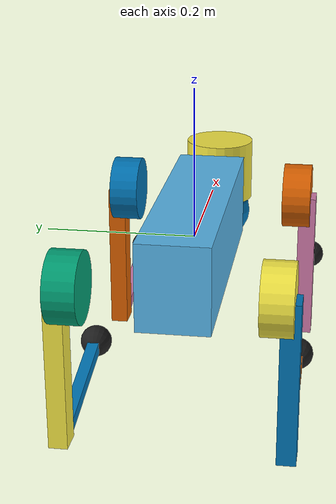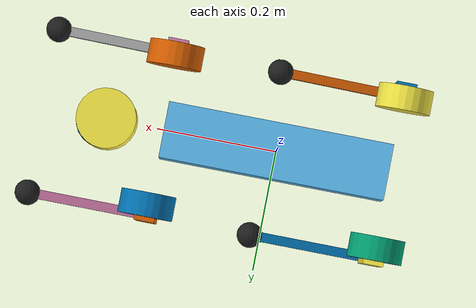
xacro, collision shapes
<?xml version="1.0"?>

<robot name="go2" xmlns:xacro="http://www.ros.org/wiki/xacro">

    <xacro:arg name="DEBUG" default="false"/>

    <xacro:include filename="$(find go2_description)/urdfs/const.xacro"/>
    <xacro:include filename="$(find go2_description)/urdfs/materials.xacro"/>
    <xacro:include filename="$(find go2_description)/urdfs/leg.xacro"/>
    <xacro:include filename="$(find go2_description)/gazebo/gazebo.xacro"/>

    <link name="base_link" />

    <joint name="floating_base" type="fixed">
        <origin rpy="0 0 0" xyz="0 0 0"/>
        <parent link="base_link"/>
        <child link="trunk"/>
    </joint>

    <link name="trunk">
        <visual>
            <origin rpy="0 0 0" xyz="0 0 0"/>
            <geometry>
                <mesh filename="package://go2_description/meshes/trunk.dae" scale="1 1 1"/>
            </geometry>
        </visual>
        <collision>
            <origin rpy="0 0 0" xyz="0 0 0"/>
            <geometry>
                <box size="${trunk_length} ${trunk_width} ${trunk_height}"/>
            </geometry>
        </collision>
        <inertial>
            <origin rpy="0 0 0" xyz="${trunk_com_x} ${trunk_com_y} ${trunk_com_z}"/>
            <mass value="${trunk_mass}"/>
            <inertia
                ixx="${trunk_ixx}" ixy="${trunk_ixy}" ixz="${trunk_ixz}"
                iyy="${trunk_iyy}" iyz="${trunk_iyz}"
                izz="${trunk_izz}"/>
        </inertial>
    </link>

    <!-- Unitree's go2.urdf placement, i.e. where the real robot's IMU is -->
    <joint name="imu_joint" type="fixed">
        <parent link="trunk"/>
        <child link="imu_link"/>
        <origin rpy="0 0 0" xyz="-0.02557 0 0.04232"/>
    </joint>

    <!-- Identical to Unitree's imu_link: a massless frame with no geometry. The Gazebo IMU sensor
         (gazebo/gazebo.xacro) is attached here with zero extra offset. -->
    <link name="imu_link">
        <inertial>
            <origin rpy="0 0 0" xyz="0 0 0"/>
            <mass value="0"/>
            <inertia ixx="0" ixy="0" ixz="0" iyy="0" iyz="0" izz="0"/>
        </inertial>
    </link>

    <!-- Head shells (Unitree's head_upper / head_lower): collision only, negligible mass -->
    <joint name="head_upper_joint" type="fixed">
        <origin rpy="0 0 0" xyz="0.285 0 0.01"/>
        <parent link="trunk"/>
        <child link="head_upper"/>
    </joint>
    <link name="head_upper">
        <inertial>
            <origin rpy="0 0 0" xyz="0 0 0"/>
            <mass value="0.001"/>
            <inertia ixx="9.6e-06" ixy="0" ixz="0" iyy="9.6e-06" iyz="0" izz="9.6e-06"/>
        </inertial>
        <collision>
            <origin rpy="0 0 0" xyz="0 0 0"/>
            <geometry>
                <cylinder radius="0.05" length="0.09"/>
            </geometry>
        </collision>
    </link>

    <joint name="head_lower_joint" type="fixed">
        <origin rpy="0 0 0" xyz="0.008 0 -0.07"/>
        <parent link="head_upper"/>
        <child link="head_lower"/>
    </joint>
    <link name="head_lower">
        <inertial>
            <origin rpy="0 0 0" xyz="0 0 0"/>
            <mass value="0.001"/>
            <inertia ixx="9.6e-06" ixy="0" ixz="0" iyy="9.6e-06" iyz="0" izz="9.6e-06"/>
        </inertial>
        <collision>
            <origin rpy="0 0 0" xyz="0 0 0"/>
            <geometry>
                <sphere radius="0.047"/>
            </geometry>
        </collision>
    </link>

    <xacro:leg name="rf" mirror="-1" mirror_dae= "False" front_hind="1"  front_hind_dae="True"  />
    <xacro:leg name="lf" mirror="1"  mirror_dae="True"   front_hind="1"  front_hind_dae="True"  />
    <xacro:leg name="rh" mirror="-1" mirror_dae="False"  front_hind="-1" front_hind_dae="False" />
    <xacro:leg name="lh" mirror="1"  mirror_dae="True"   front_hind="-1" front_hind_dae="False" />

    <!-- Body contacts damped like the feet: undamped, the body chatters on the ground while the
         robot lies and the accelerometer calibration never settles. -->
    <gazebo reference="trunk">
        <kp>1000000.0</kp>
        <kd>${contact_kd}</kd>
    </gazebo>
    <gazebo reference="head_upper">
        <kp>1000000.0</kp>
        <kd>${contact_kd}</kd>
    </gazebo>
    <gazebo reference="head_lower">
        <kp>1000000.0</kp>
        <kd>${contact_kd}</kd>
    </gazebo>
</robot>

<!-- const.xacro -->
<robot xmlns:xacro="http://www.ros.org/wiki/xacro">

    <xacro:property name="PI" value="3.1415926535897931"/>
    <xacro:property name="stick_mass" value="0.00001"/>

    <!-- simplified collision value -->
    <xacro:property name="trunk_width" value="0.0935"/>
    <xacro:property name="trunk_length" value="0.3762"/>
    <xacro:property name="trunk_height" value="0.114"/>
    <xacro:property name="hip_radius" value="0.046"/>
    <xacro:property name="hip_length" value="0.04"/>
    <!-- lateral offset of the hip collision cylinder (Unitree: 0.08, not the 0.0955 joint offset) -->
    <xacro:property name="hip_collision_offset" value="0.08"/>
    <xacro:property name="upperleg_shoulder_radius" value="0.041"/>
    <xacro:property name="upperleg_shoulder_length" value="0.032"/>
    <xacro:property name="upperleg_width" value="0.0245"/>
    <xacro:property name="upperleg_height" value="0.034"/>
    <xacro:property name="lowerleg_width" value="0.016"/>
    <xacro:property name="lowerleg_height" value="0.016"/>
    <xacro:property name="foot_radius" value="0.022"/>
    <!-- the foot sphere sits 2 mm behind the foot frame -->
    <xacro:property name="foot_collision_offset_x" value="-0.002"/>
    <xacro:property name="stick_radius" value="0.01"/>
    <xacro:property name="stick_length" value="0.2"/>

    <!-- kinematic value -->
    <xacro:property name="upperleg_offset" value="0.0955"/>
    <xacro:property name="upperleg_length" value="0.213"/>
    <xacro:property name="lowerleg_length" value="0.213"/>

    <!-- leg offset from trunk center value -->
    <xacro:property name="leg_offset_x" value="0.1934"/>
    <xacro:property name="leg_offset_y" value="0.0465"/>
    <xacro:property name="hip_offset" value="0.0955"/>

    <!-- offset of link locations (left front) -->
    <xacro:property name="hip_offset_x" value="0.1934"/>
    <xacro:property name="hip_offset_y" value="0.0465"/>
    <xacro:property name="hip_offset_z" value="0.0"/>

    <xacro:property name="upperleg_offset_x" value="0"/>
    <xacro:property name="upperleg_offset_y" value="0.0955"/>
    <xacro:property name="upperleg_offset_z" value="0.0"/>

    <xacro:property name="lowerleg_offset_x" value="0.0"/>
    <xacro:property name="lowerleg_offset_y" value="0.0"/>
    <xacro:property name="lowerleg_offset_z" value="-0.213"/>

    <!-- joint limits -->
    <xacro:property name="joint_coulomb" value="${dict(haa=0.24, hfe=0.23, kfe=0.8)}"/>
    <xacro:property name="joint_viscous" value="${dict(haa=0.25, hfe=0.22, kfe=0.29)}"/>
    <xacro:property name="joint_armature" value="${dict(haa=0.02, hfe=0.023, kfe=0.037)}"/>

    <!-- Contact damping, N s/m (leg.gazebo.xacro and the body): at 100 the feet bounce on touchdown. -->
    <xacro:property name="contact_kd" value="3000.0"/>
    <xacro:property name="haa_max" value="1.0472"/>
    <xacro:property name="haa_min" value="-1.0472"/>
    <xacro:property name="haa_velocity_max" value="30.1"/>
    <xacro:property name="haa_torque_max" value="23.7"/>
    <xacro:property name="hfe_max" value="3.4907"/>
    <xacro:property name="hfe_min" value="-1.5708"/>
    <!-- the hind thighs have a different range from the front ones -->
    <xacro:property name="hfe_max_hind" value="4.5379"/>
    <xacro:property name="hfe_min_hind" value="-0.5236"/>
    <xacro:property name="hfe_velocity_max" value="30.1"/>
    <xacro:property name="hfe_torque_max" value="23.7"/>
    <xacro:property name="kfe_max" value="-0.83776"/>
    <xacro:property name="kfe_min" value="-2.7227"/>
    <xacro:property name="kfe_velocity_max" value="15.70"/>
    <xacro:property name="kfe_torque_max" value="45.43"/>

    <!-- dynamics inertial value -->
    <!-- trunk -->
    <xacro:property name="trunk_mass" value="6.921"/>
    <xacro:property name="trunk_com_x" value="0.021112"/>
    <xacro:property name="trunk_com_y" value="0.00"/>
    <xacro:property name="trunk_com_z" value="-0.005366"/>
    <xacro:property name="trunk_ixx" value="0.02448"/>
    <xacro:property name="trunk_ixy" value="0.00012166"/>
    <xacro:property name="trunk_ixz" value="0.0014849"/>
    <xacro:property name="trunk_iyy" value="0.098077"/>
    <xacro:property name="trunk_iyz" value="-3.12E-05"/>
    <xacro:property name="trunk_izz" value="0.107"/>

    <!-- hip (left front) -->
    <xacro:property name="hip_mass" value="0.678"/>
    <xacro:property name="hip_com_x" value="-0.0054"/>
    <xacro:property name="hip_com_y" value="0.00194"/>
    <xacro:property name="hip_com_z" value="-0.000105"/>
    <xacro:property name="hip_ixx" value="0.00048"/>
    <xacro:property name="hip_ixy" value="-3.01E-06"/>
    <xacro:property name="hip_ixz" value="1.11E-06"/>
    <xacro:property name="hip_iyy" value="0.000884"/>
    <xacro:property name="hip_iyz" value="-1.42E-06"/>
    <xacro:property name="hip_izz" value="0.000596"/>

    <!-- upperleg -->
    <xacro:property name="upperleg_mass" value="1.152"/>
    <xacro:property name="upperleg_com_x" value="-0.00374"/>
    <xacro:property name="upperleg_com_y" value="-0.0223"/>
    <xacro:property name="upperleg_com_z" value="-0.0327"/>
    <xacro:property name="upperleg_ixx" value="0.00584"/>
    <xacro:property name="upperleg_ixy" value="8.72E-05"/>
    <xacro:property name="upperleg_ixz" value="-0.000289"/>
    <xacro:property name="upperleg_iyy" value="0.0058"/>
    <xacro:property name="upperleg_iyz" value="0.000808"/>
    <xacro:property name="upperleg_izz" value="0.00103"/>

    <!-- lowerleg -->
    <xacro:property name="lowerleg_mass" value="0.154"/>
    <xacro:property name="lowerleg_com_x" value="0.00548"/>
    <xacro:property name="lowerleg_com_y" value="-0.000975"/>
    <xacro:property name="lowerleg_com_z" value="-0.115"/>
    <xacro:property name="lowerleg_ixx" value="0.00108"/>
    <xacro:property name="lowerleg_ixy" value="3.4E-07"/>
    <xacro:property name="lowerleg_ixz" value="1.72E-05"/>
    <xacro:property name="lowerleg_iyy" value="0.0011"/>
    <xacro:property name="lowerleg_iyz" value="8.28E-06"/>
    <xacro:property name="lowerleg_izz" value="3.29E-05"/>

    <!-- foot -->
    <xacro:property name="foot_mass" value="0.04"/>
    <xacro:property name="foot_inertia" value="9.6e-06"/>

    <xacro:property name="rotor_mass" value="0.089"/>
    <xacro:property name="rotor_i_axis" value="0.000111842"/>
    <xacro:property name="rotor_i_radial" value="0.000059647"/>
    <xacro:property name="haa_rotor_offset_x" value="0.11215"/>
    <xacro:property name="haa_rotor_offset_y" value="0.04675"/>
    <xacro:property name="hfe_rotor_offset_y" value="-0.00015"/>
    <xacro:property name="kfe_rotor_offset_y" value="-0.03235"/>

</robot>

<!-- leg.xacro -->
<robot xmlns:xacro="http://www.ros.org/wiki/xacro">

    <!-- Things that are needed only for Gazebo (not the physical robot). These include sensor and controller plugin specifications -->
    <xacro:include filename="$(find go2_description)/urdfs/leg.transmission.xacro"/>
    <xacro:include filename="$(find go2_description)/urdfs/leg.gazebo.xacro"/>

    <xacro:macro name="leg" params="name mirror mirror_dae front_hind front_hind_dae">

        <joint name="${name}_haa_joint" type="revolute">
            <xacro:if value="${(mirror_dae == False) and (front_hind_dae == True)}">
                <origin rpy="0 0 0" xyz="${leg_offset_x} ${-leg_offset_y} 0"/>
            </xacro:if>
            <xacro:if value="${(mirror_dae == True) and (front_hind_dae == True)}">
                <origin rpy="0 0 0" xyz="${leg_offset_x} ${leg_offset_y} 0"/>
            </xacro:if>
            <xacro:if value="${(mirror_dae == False) and (front_hind_dae == False)}">
                <origin rpy="0 0 0" xyz="${-leg_offset_x} ${-leg_offset_y} 0"/>
            </xacro:if>
            <xacro:if value="${(mirror_dae == True) and (front_hind_dae == False)}">
                <origin rpy="0 0 0" xyz="${-leg_offset_x} ${leg_offset_y} 0"/>
            </xacro:if>
            <parent link="trunk"/>
            <child link="${name}_hip"/>
            <axis xyz="1 0 0"/>
            <dynamics damping="${joint_viscous['haa']}" friction="${joint_coulomb['haa']}"/>
            <xacro:if value="${(mirror_dae == True)}">
                <limit effort="${haa_torque_max}" velocity="${haa_velocity_max}" lower="${haa_min}" upper="${haa_max}"/>
            </xacro:if>
            <xacro:if value="${(mirror_dae == False)}">
                <limit effort="${haa_torque_max}" velocity="${haa_velocity_max}" lower="${-haa_max}" upper="${-haa_min}"/>
            </xacro:if>
        </joint>

        <link name="${name}_hip">
            <visual>
                <xacro:if value="${(mirror_dae == True) and (front_hind_dae == True)}">
                    <origin rpy="0 0 0" xyz="0 0 0"/>
                </xacro:if>
                <xacro:if value="${(mirror_dae == False) and (front_hind_dae == True)}">
                    <origin rpy="${PI} 0 0" xyz="0 0 0"/>
                </xacro:if>
                <xacro:if value="${(mirror_dae == True) and (front_hind_dae == False)}">
                    <origin rpy="0 ${PI} 0" xyz="0 0 0"/>
                </xacro:if>
                <xacro:if value="${(mirror_dae == False) and (front_hind_dae == False)}">
                    <origin rpy="${PI} ${PI} 0" xyz="0 0 0"/>
                </xacro:if>
                <geometry>
                    <mesh filename="package://go2_description/meshes/hip.dae" scale="1 1 1"/>
                </geometry>
            </visual>
            <collision>
                <origin rpy="${PI/2.0} 0 0" xyz="0 ${hip_collision_offset*mirror} 0"/>
                <geometry>
                    <cylinder length="${hip_length}" radius="${hip_radius}"/>
                </geometry>
            </collision>
            <inertial>
                <origin rpy="0 0 0" xyz="${hip_com_x*front_hind} ${hip_com_y*mirror} ${hip_com_z}"/>
                <mass value="${hip_mass}"/>
                <inertia
                    ixx="${hip_ixx}" ixy="${hip_ixy*mirror*front_hind}" ixz="${hip_ixz*front_hind}"
                    iyy="${hip_iyy}" iyz="${hip_iyz*mirror}"
                    izz="${hip_izz}"/>
            </inertial>
        </link>

        <joint name="${name}_hfe_joint" type="revolute">
            <origin rpy="0 0 0" xyz="0 ${upperleg_offset*mirror} 0"/>
            <parent link="${name}_hip"/>
            <child link="${name}_upperleg"/>
            <axis xyz="0 1 0"/>
            <dynamics damping="${joint_viscous['hfe']}" friction="${joint_coulomb['hfe']}"/>
            <xacro:if value="${front_hind_dae == True}">
                <limit effort="${hfe_torque_max}" velocity="${hfe_velocity_max}" lower="${hfe_min}" upper="${hfe_max}"/>
            </xacro:if>
            <xacro:if value="${front_hind_dae == False}">
                <limit effort="${hfe_torque_max}" velocity="${hfe_velocity_max}" lower="${hfe_min_hind}" upper="${hfe_max_hind}"/>
            </xacro:if>
        </joint>

        <link name="${name}_upperleg">
            <visual>
                <origin rpy="0 0 0" xyz="0 0 0"/>
                <geometry>
                    <xacro:if value="${mirror_dae == True}">
                        <mesh filename="package://go2_description/meshes/upperleg.dae" scale="1 1 1"/>
                    </xacro:if>
                    <xacro:if value="${mirror_dae == False}">
                        <mesh filename="package://go2_description/meshes/upperleg_mirror.dae" scale="1 1 1"/>
                    </xacro:if>
                </geometry>
            </visual>
            <collision>
                <origin rpy="0 ${PI/2.0} 0" xyz="0 0 ${-upperleg_length/2.0}"/>
                <geometry>
                    <box size="${upperleg_length} ${upperleg_width} ${upperleg_height}"/>
                </geometry>
            </collision>
            <inertial>
                <origin rpy="0 0 0" xyz="${upperleg_com_x} ${upperleg_com_y*mirror} ${upperleg_com_z}"/>
                <mass value="${upperleg_mass}"/>
                <inertia
                    ixx="${upperleg_ixx}" ixy="${upperleg_ixy*mirror}" ixz="${upperleg_ixz}"
                    iyy="${upperleg_iyy}" iyz="${upperleg_iyz*mirror}"
                    izz="${upperleg_izz}"/>
            </inertial>
        </link>

        <joint name="${name}_kfe_joint" type="revolute">
            <origin rpy="0 0 0" xyz="0 0 ${-upperleg_length}"/>
            <parent link="${name}_upperleg"/>
            <child link="${name}_lowerleg"/>
            <axis xyz="0 1 0"/>
            <dynamics damping="${joint_viscous['kfe']}" friction="${joint_coulomb['kfe']}"/>
            <limit effort="${kfe_torque_max}" velocity="${kfe_velocity_max}" lower="${kfe_min}" upper="${kfe_max}"/>
        </joint>

        <link name="${name}_lowerleg">
            <visual>
                <origin rpy="0 0 0" xyz="0 0 0"/>
                <geometry>
                    <mesh filename="package://go2_description/meshes/lowerleg.dae" scale="1 1 1"/>
                </geometry>
            </visual>
            <collision>
                <origin rpy="0 ${PI/2.0} 0" xyz="0 0 ${-lowerleg_length/2.0}"/>
                <geometry>
                    <box size="${lowerleg_length} ${lowerleg_width} ${lowerleg_height}"/>
                </geometry>
            </collision>
            <inertial>
                <origin rpy="0 0 0" xyz="${lowerleg_com_x} ${lowerleg_com_y*mirror} ${lowerleg_com_z}"/>
                <mass value="${lowerleg_mass}"/>
                <inertia
                    ixx="${lowerleg_ixx}" ixy="${lowerleg_ixy*mirror}" ixz="${lowerleg_ixz}"
                    iyy="${lowerleg_iyy}" iyz="${lowerleg_iyz*mirror}"
                    izz="${lowerleg_izz}"/>
            </inertial>
        </link>

        <joint name="${name}_foot_fixed" type="fixed">0
            <origin rpy="0 0 0" xyz="0 0 ${-(lowerleg_length)}"/>
            <parent link="${name}_lowerleg"/>
            <child link="${name}_foot"/>
        </joint>

        <link name="${name}_foot">
            <visual>
                <origin rpy="0 0 0" xyz="0 0 0"/>
                <geometry>
                    <sphere radius="${foot_radius-0.01}"/>
                </geometry>
            </visual>
            <collision>
                <origin rpy="0 0 0" xyz="${foot_collision_offset_x} 0 0"/>
                <geometry>
                    <sphere radius="${foot_radius}"/>
                </geometry>
            </collision>
            <inertial>
                <mass value="${foot_mass}"/>
                <inertia
                    ixx="${foot_inertia}" ixy="0.0" ixz="0.0"
                    iyy="${foot_inertia}" iyz="0.0"
                    izz="${foot_inertia}"/>
            </inertial>
        </link>

        <joint name="${name}_haa_rotor_joint" type="fixed">
            <origin rpy="0 0 0" xyz="${haa_rotor_offset_x*front_hind} ${haa_rotor_offset_y*mirror} 0"/>
            <parent link="trunk"/>
            <child link="${name}_haa_rotor"/>
        </joint>
        <link name="${name}_haa_rotor">
            <inertial>
                <origin rpy="0 0 0" xyz="0 0 0"/>
                <mass value="${rotor_mass}"/>
                <inertia ixx="${rotor_i_axis}" ixy="0.0" ixz="0.0"
                         iyy="${rotor_i_radial}" iyz="0.0" izz="${rotor_i_radial}"/>
            </inertial>
        </link>

        <joint name="${name}_hfe_rotor_joint" type="fixed">
            <origin rpy="0 0 0" xyz="0 ${hfe_rotor_offset_y*mirror} 0"/>
            <parent link="${name}_hip"/>
            <child link="${name}_hfe_rotor"/>
        </joint>
        <link name="${name}_hfe_rotor">
            <inertial>
                <origin rpy="0 0 0" xyz="0 0 0"/>
                <mass value="${rotor_mass}"/>
                <inertia ixx="${rotor_i_radial}" ixy="0.0" ixz="0.0"
                         iyy="${rotor_i_axis}" iyz="0.0" izz="${rotor_i_radial}"/>
            </inertial>
        </link>

        <joint name="${name}_kfe_rotor_joint" type="fixed">
            <origin rpy="0 0 0" xyz="0 ${kfe_rotor_offset_y*mirror} 0"/>
            <parent link="${name}_upperleg"/>
            <child link="${name}_kfe_rotor"/>
        </joint>
        <link name="${name}_kfe_rotor">
            <inertial>
                <origin rpy="0 0 0" xyz="0 0 0"/>
                <mass value="${rotor_mass}"/>
                <inertia ixx="${rotor_i_radial}" ixy="0.0" ixz="0.0"
                         iyy="${rotor_i_axis}" iyz="0.0" izz="${rotor_i_radial}"/>
            </inertial>
        </link>

        <xacro:leg_transmission name="${name}"/>
        <xacro:leg_gazebo name="${name}"/>

        <!-- Reflected rotor inertia (const.xacro), built from gazebo_plugins/joint_armature_plugin -->
        <gazebo>
            <plugin name="joint_armature_${name}" filename="libjoint_armature_plugin.so">
                <joint name="${name}_haa_joint">${joint_armature['haa']}</joint>
                <joint name="${name}_hfe_joint">${joint_armature['hfe']}</joint>
                <joint name="${name}_kfe_joint">${joint_armature['kfe']}</joint>
            </plugin>
        </gazebo>
    </xacro:macro>
</robot>
